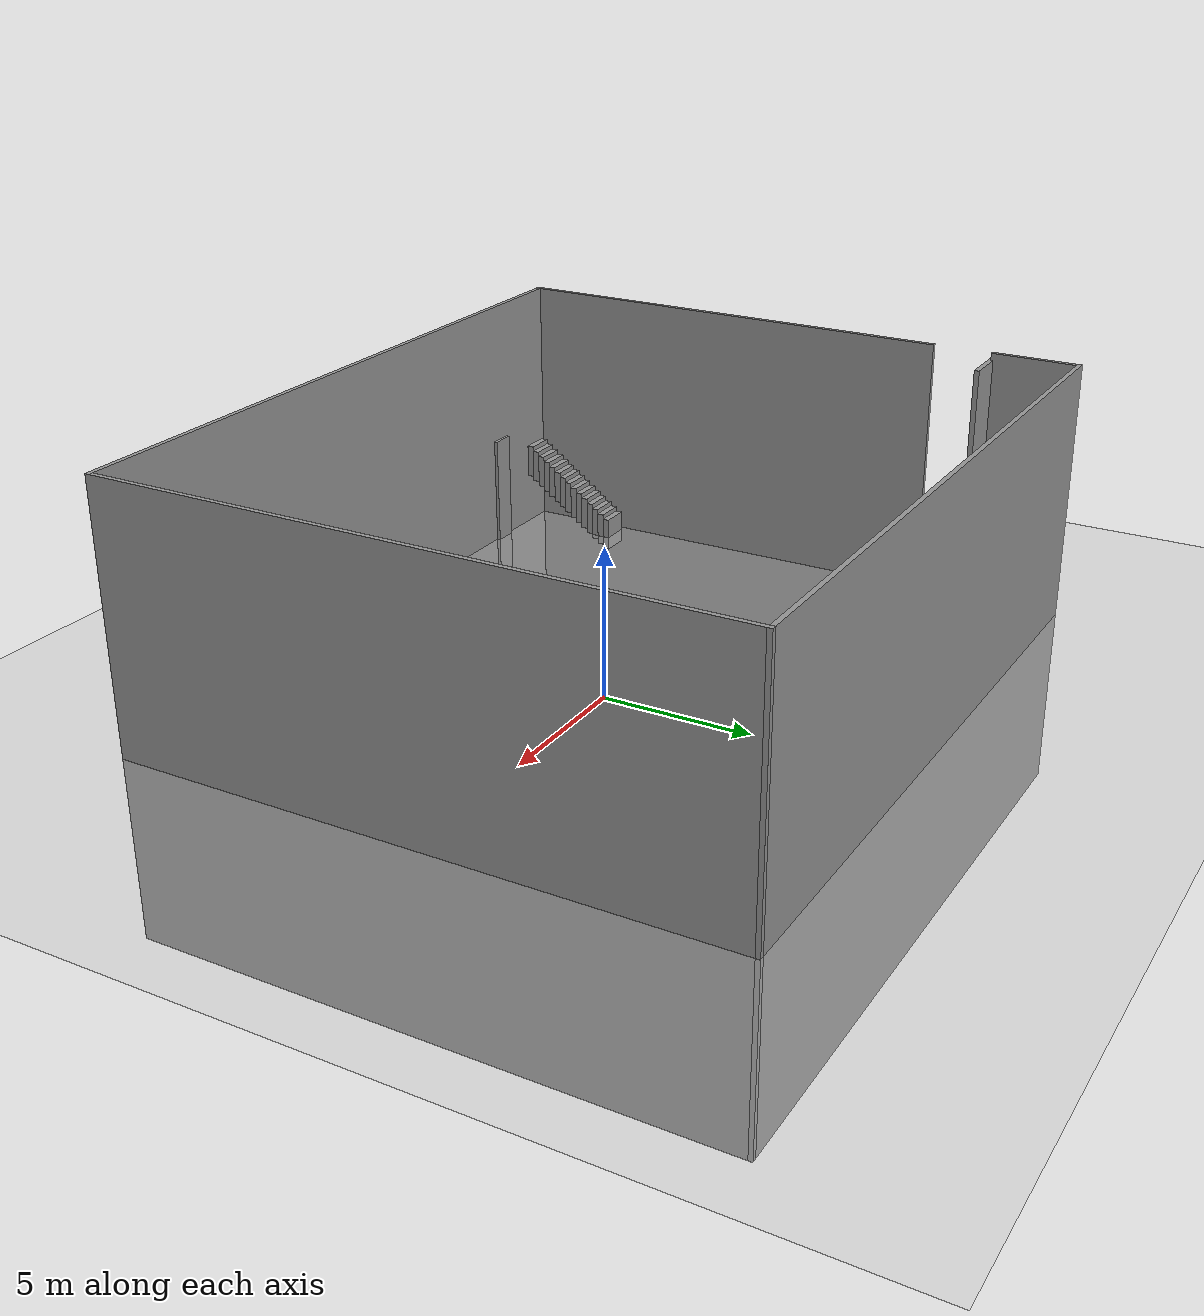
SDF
<sdf version="1.7">
 <world name="default">
  <light name="sun" type="directional">
   <pose>0 0 10 0 -0 0</pose>
   <diffuse>0.8 0.8 0.8 1</diffuse>
   <specular>0.2 0.2 0.2 1</specular>
   <attenuation>
    <range>1000</range>
    <constant>0.9</constant>
    <linear>0.01</linear>
    <quadratic>0.001</quadratic>
   </attenuation>
   <direction>-0.5 0.1 -0.9</direction>
   <spot><inner_angle>0</inner_angle><outer_angle>0</outer_angle><falloff>0</falloff></spot>
  </light>
  <model name="ground_plane">
   <static>1</static>
   <link name="link">
    <collision name="collision">
     <geometry><plane><normal>0 0 1</normal><size>100 100</size></plane></geometry>
     <surface>
      <contact><collide_bitmask>65535</collide_bitmask></contact>
      <friction><ode><mu>100</mu><mu2>50</mu2></ode></friction>
     </surface>
    </collision>
    <visual name="visual">
     <cast_shadows>0</cast_shadows>
     <geometry><plane><normal>0 0 1</normal><size>100 100</size></plane></geometry>
     <material>
      <script><uri>file://media/materials/scripts/gazebo.material</uri><name>Gazebo/Grey</name></script>
     </material>
    </visual>
   </link>
  </model>
  <gravity>0 0 -9.8</gravity>
  <magnetic_field>6e-06 2.3e-05 -4.2e-05</magnetic_field>
  <atmosphere type="adiabatic"/>
  <physics type="ode">
   <max_step_size>0.001</max_step_size>
   <real_time_factor>1</real_time_factor>
   <real_time_update_rate>1000</real_time_update_rate>
  </physics>
  <scene><ambient>0.4 0.4 0.4 1</ambient><background>0.7 0.7 0.7 1</background><shadows>1</shadows></scene>
  <spherical_coordinates>
   <surface_model>EARTH_WGS84</surface_model>
   <latitude_deg>0</latitude_deg>
   <longitude_deg>0</longitude_deg>
   <elevation>0</elevation>
   <heading_deg>0</heading_deg>
  </spherical_coordinates>
  <model name="Untitled">
   <pose>-1.395 -0.03764 0 0 -0 0</pose>
   <link name="Door_0">
    <collision name="Door_0_Collision">
     <geometry><box><size>1.9 0.17 15</size></box></geometry>
     <pose>0 0 1 0 -0 0</pose>
    </collision>
    <visual name="Door_0_Visual">
     <pose>0 0 1 0 -0 0</pose>
     <geometry><box><size>1.9 0.17 15</size></box></geometry>
     <material>
      <script><uri>file://media/materials/scripts/gazebo.material</uri><name>Gazebo/Grey</name></script>
     </material>
    </visual>
    <pose>-11.0992 7.24619 0 0 -0 0</pose>
   </link>
   <link name="Stairs_0">
    <visual name="Stairs_0_Visual_0">
     <pose>-10.7755 -6.65542 0.083333 0 -0 0</pose>
     <geometry><box><size>1 0.233333 1.16667</size></box></geometry>
     <material>
      <script><uri>file://media/materials/scripts/gazebo.material</uri><name>Gazebo/Grey</name></script>
      <ambient>1 1 1 1</ambient>
     </material>
     <meta><layer>0</layer></meta>
    </visual>
    <collision name="Stairs_0_Collision_0">
     <geometry><box><size>1 0.233333 1.16667</size></box></geometry>
     <pose>-10.7755 -6.65542 0.083333 0 -0 0</pose>
    </collision>
    <visual name="Stairs_0_Visual_1">
     <pose>-10.7755 -6.88875 0.25 0 -0 0</pose>
     <geometry><box><size>1 0.233333 1.16667</size></box></geometry>
     <material>
      <script><uri>file://media/materials/scripts/gazebo.material</uri><name>Gazebo/Grey</name></script>
      <ambient>1 1 1 1</ambient>
     </material>
     <meta><layer>0</layer></meta>
    </visual>
    <collision name="Stairs_0_Collision_1">
     <geometry><box><size>1 0.233333 1.16667</size></box></geometry>
     <pose>-10.7755 -6.88875 0.25 0 -0 0</pose>
    </collision>
    <visual name="Stairs_0_Visual_2">
     <pose>-10.7755 -7.12208 0.416667 0 -0 0</pose>
     <geometry><box><size>1 0.233333 1.16667</size></box></geometry>
     <material>
      <script><uri>file://media/materials/scripts/gazebo.material</uri><name>Gazebo/Grey</name></script>
      <ambient>1 1 1 1</ambient>
     </material>
     <meta><layer>0</layer></meta>
    </visual>
    <collision name="Stairs_0_Collision_2">
     <geometry><box><size>1 0.233333 1.16667</size></box></geometry>
     <pose>-10.7755 -7.12208 0.416667 0 -0 0</pose>
    </collision>
    <visual name="Stairs_0_Visual_3">
     <pose>-10.7755 -7.35541 0.583333 0 -0 0</pose>
     <geometry><box><size>1 0.233333 1.16667</size></box></geometry>
     <material>
      <script><uri>file://media/materials/scripts/gazebo.material</uri><name>Gazebo/Grey</name></script>
      <ambient>1 1 1 1</ambient>
     </material>
     <meta><layer>0</layer></meta>
    </visual>
    <collision name="Stairs_0_Collision_3">
     <geometry><box><size>1 0.233333 1.16667</size></box></geometry>
     <pose>-10.7755 -7.35541 0.583333 0 -0 0</pose>
    </collision>
    <visual name="Stairs_0_Visual_4">
     <pose>-10.7755 -7.58875 0.75 0 -0 0</pose>
     <geometry><box><size>1 0.233333 1.16667</size></box></geometry>
     <material>
      <script><uri>file://media/materials/scripts/gazebo.material</uri><name>Gazebo/Grey</name></script>
      <ambient>1 1 1 1</ambient>
     </material>
     <meta><layer>0</layer></meta>
    </visual>
    <collision name="Stairs_0_Collision_4">
     <geometry><box><size>1 0.233333 1.16667</size></box></geometry>
     <pose>-10.7755 -7.58875 0.75 0 -0 0</pose>
    </collision>
    <visual name="Stairs_0_Visual_5">
     <pose>-10.7755 -7.82208 0.916667 0 -0 0</pose>
     <geometry><box><size>1 0.233333 1.16667</size></box></geometry>
     <material>
      <script><uri>file://media/materials/scripts/gazebo.material</uri><name>Gazebo/Grey</name></script>
      <ambient>1 1 1 1</ambient>
     </material>
     <meta><layer>0</layer></meta>
    </visual>
    <collision name="Stairs_0_Collision_5">
     <geometry><box><size>1 0.233333 1.16667</size></box></geometry>
     <pose>-10.7755 -7.82208 0.916667 0 -0 0</pose>
    </collision>
    <visual name="Stairs_0_Visual_6">
     <pose>-10.7755 -8.05541 1.08333 0 -0 0</pose>
     <geometry><box><size>1 0.233333 1.16667</size></box></geometry>
     <material>
      <script><uri>file://media/materials/scripts/gazebo.material</uri><name>Gazebo/Grey</name></script>
      <ambient>1 1 1 1</ambient>
     </material>
     <meta><layer>0</layer></meta>
    </visual>
    <collision name="Stairs_0_Collision_6">
     <geometry><box><size>1 0.233333 1.16667</size></box></geometry>
     <pose>-10.7755 -8.05541 1.08333 0 -0 0</pose>
    </collision>
    <visual name="Stairs_0_Visual_7">
     <pose>-10.7755 -8.28875 1.25 0 -0 0</pose>
     <geometry><box><size>1 0.233333 1.16667</size></box></geometry>
     <material>
      <script><uri>file://media/materials/scripts/gazebo.material</uri><name>Gazebo/Grey</name></script>
      <ambient>1 1 1 1</ambient>
     </material>
     <meta><layer>0</layer></meta>
    </visual>
    <collision name="Stairs_0_Collision_7">
     <geometry><box><size>1 0.233333 1.16667</size></box></geometry>
     <pose>-10.7755 -8.28875 1.25 0 -0 0</pose>
    </collision>
    <visual name="Stairs_0_Visual_8">
     <pose>-10.7755 -8.52208 1.41667 0 -0 0</pose>
     <geometry><box><size>1 0.233333 1.16667</size></box></geometry>
     <material>
      <script><uri>file://media/materials/scripts/gazebo.material</uri><name>Gazebo/Grey</name></script>
      <ambient>1 1 1 1</ambient>
     </material>
     <meta><layer>0</layer></meta>
    </visual>
    <collision name="Stairs_0_Collision_8">
     <geometry><box><size>1 0.233333 1.16667</size></box></geometry>
     <pose>-10.7755 -8.52208 1.41667 0 -0 0</pose>
    </collision>
    <visual name="Stairs_0_Visual_9">
     <pose>-10.7755 -8.75542 1.58333 0 -0 0</pose>
     <geometry><box><size>1 0.233333 1.16667</size></box></geometry>
     <material>
      <script><uri>file://media/materials/scripts/gazebo.material</uri><name>Gazebo/Grey</name></script>
      <ambient>1 1 1 1</ambient>
     </material>
     <meta><layer>0</layer></meta>
    </visual>
    <collision name="Stairs_0_Collision_9">
     <geometry><box><size>1 0.233333 1.16667</size></box></geometry>
     <pose>-10.7755 -8.75542 1.58333 0 -0 0</pose>
    </collision>
    <visual name="Stairs_0_Visual_10">
     <pose>-10.7755 -8.98875 1.75 0 -0 0</pose>
     <geometry><box><size>1 0.233333 1.16667</size></box></geometry>
     <material>
      <script><uri>file://media/materials/scripts/gazebo.material</uri><name>Gazebo/Grey</name></script>
      <ambient>1 1 1 1</ambient>
     </material>
     <meta><layer>0</layer></meta>
    </visual>
    <collision name="Stairs_0_Collision_10">
     <geometry><box><size>1 0.233333 1.16667</size></box></geometry>
     <pose>-10.7755 -8.98875 1.75 0 -0 0</pose>
    </collision>
    <visual name="Stairs_0_Visual_11">
     <pose>-10.7755 -9.22208 1.91667 0 -0 0</pose>
     <geometry><box><size>1 0.233333 1.16667</size></box></geometry>
     <material>
      <script><uri>file://media/materials/scripts/gazebo.material</uri><name>Gazebo/Grey</name></script>
      <ambient>1 1 1 1</ambient>
     </material>
     <meta><layer>0</layer></meta>
    </visual>
    <collision name="Stairs_0_Collision_11">
     <geometry><box><size>1 0.233333 1.16667</size></box></geometry>
     <pose>-10.7755 -9.22208 1.91667 0 -0 0</pose>
    </collision>
    <visual name="Stairs_0_Visual_12">
     <pose>-10.7755 -9.45542 2.08333 0 -0 0</pose>
     <geometry><box><size>1 0.233333 1.16667</size></box></geometry>
     <material>
      <script><uri>file://media/materials/scripts/gazebo.material</uri><name>Gazebo/Grey</name></script>
      <ambient>1 1 1 1</ambient>
     </material>
     <meta><layer>0</layer></meta>
    </visual>
    <collision name="Stairs_0_Collision_12">
     <geometry><box><size>1 0.233333 1.16667</size></box></geometry>
     <pose>-10.7755 -9.45542 2.08333 0 -0 0</pose>
    </collision>
    <visual name="Stairs_0_Visual_13">
     <pose>-10.7755 -9.68875 2.25 0 -0 0</pose>
     <geometry><box><size>1 0.233333 1.16667</size></box></geometry>
     <material>
      <script><uri>file://media/materials/scripts/gazebo.material</uri><name>Gazebo/Grey</name></script>
      <ambient>1 1 1 1</ambient>
     </material>
     <meta><layer>0</layer></meta>
    </visual>
    <collision name="Stairs_0_Collision_13">
     <geometry><box><size>1 0.233333 1.16667</size></box></geometry>
     <pose>-10.7755 -9.68875 2.25 0 -0 0</pose>
    </collision>
    <visual name="Stairs_0_Visual_14">
     <pose>-10.7755 -9.92208 2.41667 0 -0 0</pose>
     <geometry><box><size>1 0.233333 1.16667</size></box></geometry>
     <material>
      <script><uri>file://media/materials/scripts/gazebo.material</uri><name>Gazebo/Grey</name></script>
      <ambient>1 1 1 1</ambient>
     </material>
     <meta><layer>0</layer></meta>
    </visual>
    <collision name="Stairs_0_Collision_14">
     <geometry><box><size>1 0.233333 1.16667</size></box></geometry>
     <pose>-10.7755 -9.92208 2.41667 0 -0 0</pose>
    </collision>
   </link>
   <link name="Wall_4">
    <collision name="Wall_4_Collision">
     <geometry><box><size>15.5 0.15 15</size></box></geometry>
     <pose>0 0 1.25 0 -0 0</pose>
    </collision>
    <visual name="Wall_4_Visual">
     <pose>0 0 1.25 0 -0 0</pose>
     <geometry><box><size>15.5 0.15 15</size></box></geometry>
     <material>
      <script><uri>file://media/materials/scripts/gazebo.material</uri><name>Gazebo/Grey</name></script>
      <ambient>1 1 1 1</ambient>
     </material>
     <meta><layer>0</layer></meta>
    </visual>
    <pose>-11.55 -2.5 0 0 -0 -1.5708</pose>
   </link>
   <link name="Wall_5">
    <collision name="Wall_5_Collision">
     <geometry><box><size>23.25 0.15 15</size></box></geometry>
     <pose>0 0 1.25 0 -0 0</pose>
    </collision>
    <visual name="Wall_5_Visual">
     <pose>0 0 1.25 0 -0 0</pose>
     <geometry><box><size>23.25 0.15 15</size></box></geometry>
     <material>
      <script><uri>file://media/materials/scripts/gazebo.material</uri><name>Gazebo/Grey</name></script>
      <ambient>1 1 1 1</ambient>
     </material>
     <meta><layer>0</layer></meta>
    </visual>
    <pose>0 -10.175 0 0 -0 0</pose>
   </link>
   <link name="Wall_6">
    <collision name="Wall_6_Collision">
     <geometry><box><size>20.5 0.15 15</size></box></geometry>
     <pose>0 0 1.25 0 -0 0</pose>
    </collision>
    <visual name="Wall_6_Visual">
     <pose>0 0 1.25 0 -0 0</pose>
     <geometry><box><size>20.5 0.15 15</size></box></geometry>
     <material>
      <script><uri>file://media/materials/scripts/gazebo.material</uri><name>Gazebo/Grey</name></script>
      <ambient>1 1 1 1</ambient>
     </material>
     <meta><layer>0</layer></meta>
    </visual>
    <pose>11.55 0 0 0 -0 1.5708</pose>
   </link>
   <link name="Wall_7">
    <collision name="Wall_7_Collision">
     <geometry><box><size>23.25 0.15 15</size></box></geometry>
     <pose>0 0 1.25 0 -0 0</pose>
    </collision>
    <visual name="Wall_7_Visual">
     <pose>0 0 1.25 0 -0 0</pose>
     <geometry><box><size>23.25 0.15 15</size></box></geometry>
     <material>
      <script><uri>file://media/materials/scripts/gazebo.material</uri><name>Gazebo/Grey</name></script>
      <ambient>1 1 1 1</ambient>
     </material>
     <meta><layer>0</layer></meta>
    </visual>
    <pose>0 10.175 0 0 -0 3.14159</pose>
   </link>
   <link name="Wall_8">
    <collision name="Wall_8_Collision">
     <geometry><box><size>3 0.15 15</size></box></geometry>
     <pose>0 0 1.25 0 -0 0</pose>
    </collision>
    <visual name="Wall_8_Visual">
     <pose>0 0 1.25 0 -0 0</pose>
     <geometry><box><size>3 0.15 15</size></box></geometry>
     <material>
      <script><uri>file://media/materials/scripts/gazebo.material</uri><name>Gazebo/Grey</name></script>
      <ambient>1 1 1 1</ambient>
     </material>
     <meta><layer>0</layer></meta>
    </visual>
    <pose>-11.55 8.75 0 0 -0 -1.5708</pose>
   </link>
   <link name="Window_0">
    <collision name="Window_0_Collision">
     <geometry><box><size>0.8 0.17 5.8</size></box></geometry>
     <pose>0 0 0.4 0 -0 0</pose>
    </collision>
    <visual name="Window_0_Visual">
     <pose>0 0 0.4 0 -0 0</pose>
     <geometry><box><size>0.8 0.17 5.8</size></box></geometry>
     <material>
      <script><uri>file://media/materials/scripts/gazebo.material</uri><name>Gazebo/Grey</name></script>
     </material>
    </visual>
    <pose>-8.51002 -10.0688 0.5 0 -0 0</pose>
   </link>
   <static>1</static>
  </model>
 </world>
</sdf>
